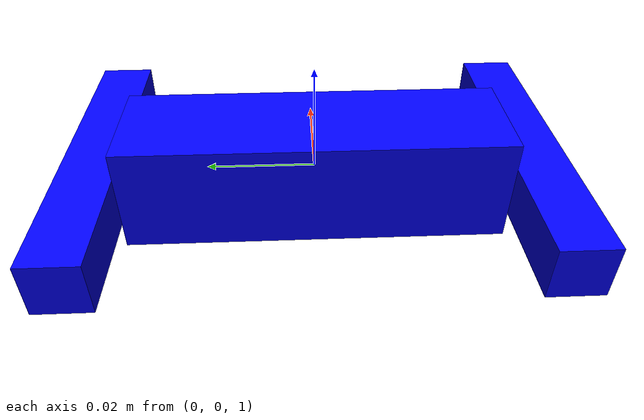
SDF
<?xml version="1.0"?>
<sdf version="1.7">
  <model name='actuator'>

    <!-- INCLUDE BASE ACTUATOR -->
    <link name='baLink'>
      <pose>0 0 1 0 0 0</pose>
      <inertial>
        <mass>0.7</mass>
        <inertia>
          <ixx>0.032</ixx>
          <ixy>0</ixy>
          <ixz>0</ixz>
          <iyy>0.00012</iyy>
          <iyz>0</iyz>
          <izz>0.032</izz>
        </inertia>
      </inertial>
      <collision name='collision'>
        <geometry>
          <box>
            <size>0.02 0.07 0.02</size>
          </box>
        </geometry>
      </collision>
      <visual name='visual'>
        <geometry>
          <box>
            <size>0.02 0.07 0.02</size>
          </box>
        </geometry>
        <material>
            <ambient>0.0 0.0 1.0 1</ambient>
            <diffuse>0.0 0.0 1.0 1</diffuse>
            <specular>0.0 0.0 1.0 1</specular>
        </material>
      </visual>
    </link>

    <!-- INCLUDE FRAME MOTOR ACTUATOR 1 -->
    <link name='fma1Link'>
      <pose relative_to="j_ba_fma1"> 0 0 0 0 0 0</pose>
      <inertial>
        <mass>0.6</mass>
        <inertia>
          <ixx>0.00012</ixx>
          <ixy>0</ixy>
          <ixz>0</ixz>
          <iyy>0.032</iyy>
          <iyz>0</iyz>
          <izz>0.032</izz>
        </inertia>
      </inertial>
      <collision name='collision'>
        <geometry>
          <box>
            <size>0.06 0.01 0.01</size>
          </box>
        </geometry>
      </collision>
      <visual name='visual'>
        <geometry>
          <box>
            <size>0.06 0.01 0.01</size>
          </box>
        </geometry>
        <material>
            <ambient>0.0 0.0 1.0 1</ambient>
            <diffuse>0.0 0.0 1.0 1</diffuse>
            <specular>0.0 0.0 1.0 1</specular>
        </material>
      </visual>
    </link>

    <!-- JOINT LEG - FRAME MOTOR 1 -->
    <joint name="j_ba_fma1" type="fixed">
      <pose relative_to="baLink"> 0 0.04 0 0 0 0 </pose>
      <parent>baLink</parent>
      <child>fma1Link</child>
    </joint>

    <!-- INCLUDE FRAME MOTOR ACTUATOR 2 -->
    <link name='fma2Link'>
      <pose relative_to="j_ba_fma2"> 0 0 0 0 0 0</pose>
      <inertial>
        <mass>0.6</mass>
        <inertia>
          <ixx>0.00012</ixx>
          <ixy>0</ixy>
          <ixz>0</ixz>
          <iyy>0.032</iyy>
          <iyz>0</iyz>
          <izz>0.032</izz>
        </inertia>
      </inertial>
      <collision name='collision'>
        <geometry>
          <box>
            <size>0.06 0.01 0.01</size>
          </box>
        </geometry>
      </collision>
      <visual name='visual'>
        <geometry>
          <box>
            <size>0.06 0.01 0.01</size>
          </box>
        </geometry>
        <material>
            <ambient>0.0 0.0 1.0 1</ambient>
            <diffuse>0.0 0.0 1.0 1</diffuse>
            <specular>0.0 0.0 1.0 1</specular>
        </material>
      </visual>
    </link>

    <!-- JOINT LEG - FRAME MOTOR 1 -->
    <joint name="j_ba_fma2" type="fixed">
      <pose relative_to="baLink"> 0 -0.04 0 0 0 0 </pose>
      <parent>baLink</parent>
      <child>fma2Link</child>
    </joint>
  </model>
</sdf>
